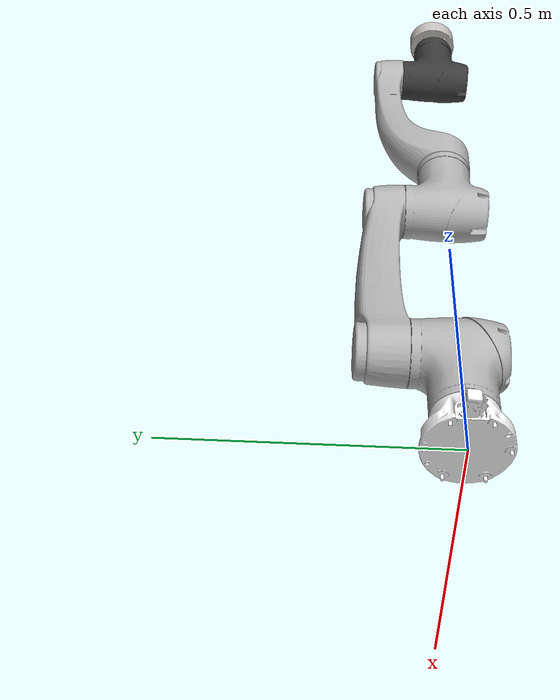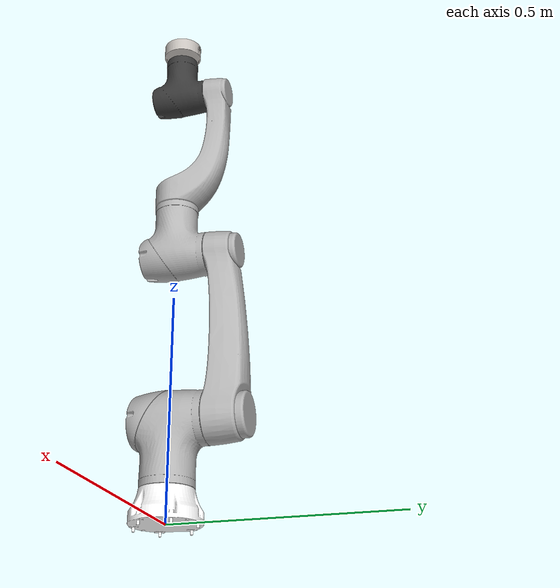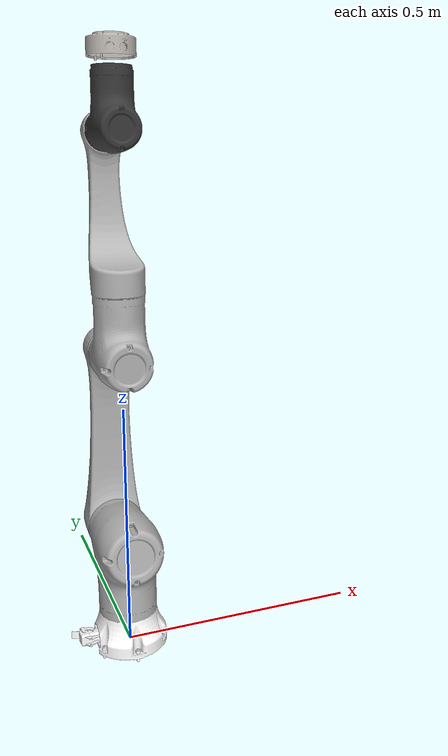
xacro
<?xml version="1.0"?>
<robot xmlns:xacro="http://www.ros.org/wiki/xacro" name="dazu_robotic_arm_trial1">
    <xacro:arg name="initial_positions_file" default="initial_positions.yaml" />

    <!-- Import dazu_robotic_arm_trial1 urdf file -->
    <xacro:include filename="$(find dazu_robotic_arm_trial1)/urdf/dazu_robotic_arm_trial1.urdf" />

    <!-- Import control_xacro -->
    <xacro:include filename="dazu_robotic_arm_trial1.ros2_control.xacro" />

</robot>

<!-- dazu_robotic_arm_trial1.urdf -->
<robot
  name="dazu_robotic_arm_trial1">
  <link
    name="base_link">
    <inertial>
      <origin
        xyz="-0.0013449 -0.0001322 0.029293"
        rpy="0 0 0" />
      <mass
        value="8.0" />
      <inertia
        ixx="0.0015773"
        ixy="1.2223E-07"
        ixz="2.1696E-05"
        iyy="0.001446"
        iyz="6.1863E-08"
        izz="0.0023657" />
    </inertial>
    <visual>
      <origin
        xyz="0 0 0"
        rpy="0 0 0" />
      <geometry>
        <mesh
          filename="file://$(find dazu_robotic_arm_trial1)/meshes/base_link.STL" />
      </geometry>
      <material
        name="">
        <color
          rgba="1 1 1 1" />
      </material>
    </visual>
    <collision>
      <origin
        xyz="0 0 0"
        rpy="0 0 0" />
      <geometry>
        <mesh
          filename="file://$(find dazu_robotic_arm_trial1)/meshes/base_link.STL" />
      </geometry>
    </collision>
  </link>
  <link
    name="Link_1">
    <inertial>
      <origin
        xyz="-3.3881E-06 0.0059071 0.10092"
        rpy="0 0 0" />
      <mass
        value="8.0" />
      <inertia
        ixx="1.0"
        ixy="0.0"
        ixz="0.0"
        iyy="1.0"
        iyz="0.0"
        izz="1.0" />
    </inertial>
    <visual>
      <origin
        xyz="0 0 0"
        rpy="0 0 0" />
      <geometry>
        <mesh
          filename="file://$(find dazu_robotic_arm_trial1)/meshes/Link_1.STL" />
      </geometry>
      <material
        name="">
        <color
          rgba="0.69804 0.69804 0.69804 1" />
      </material>
    </visual>
    <collision>
      <origin
        xyz="0 0 0"
        rpy="0 0 0" />
      <geometry>
        <mesh
          filename="file://$(find dazu_robotic_arm_trial1)/meshes/Link_1.STL" />
      </geometry>
    </collision>
  </link>
  <joint
    name="Joint_1"
    type="revolute">
    <origin
      xyz="-0.0021038 -0.0001266 0.081"
      rpy="0 0 0" />
    <parent
      link="base_link" />
    <child
      link="Link_1" />
    <axis
      xyz="0 0 1" />
    <limit
      lower="-3.14"
      upper="3.14"
      effort="1000"
      velocity="3.000001" />
    <dynamics damping="10.0" friction="10.0"/>
  </joint>
  <link
    name="Link_2">
    <inertial>
      <origin
        xyz="3.37437573807456E-06 0.00469157479008332 0.159177712639718"
        rpy="0 0 0" />
      <mass
        value="8.0" />
      <inertia
        ixx="1.0"
        ixy="0.0"
        ixz="0.0"
        iyy="1.0"
        iyz="0.0"
        izz="1.0" />
    </inertial>
    <visual>
      <origin
        xyz="0 0 0"
        rpy="0 0 0" />
      <geometry>
        <mesh
          filename="file://$(find dazu_robotic_arm_trial1)/meshes/Link_2.STL" />
      </geometry>
      <material
        name="">
        <color
          rgba="0.698039215686274 0.698039215686274 0.698039215686274 1" />
      </material>
    </visual>
    <collision>
      <origin
        xyz="0 0 0"
        rpy="0 0 0" />
      <geometry>
        <mesh
          filename="file://$(find dazu_robotic_arm_trial1)/meshes/Link_2.STL" />
      </geometry>
    </collision>
  </link>
  <joint
    name="Joint_2"
    type="revolute">
    <origin
      xyz="0 0.12298 0.138"
      rpy="0 0 0" />
    <parent
      link="Link_1" />
    <child
      link="Link_2" />
    <axis
      xyz="0 1 0" />
    <limit
      lower="-1.57"
      upper="1.57"
      effort="1000"
      velocity="3.000001" />
    <dynamics damping="10.0" friction="10.0"/>
  </joint>
  <link
    name="Link_3">
    <inertial>
      <origin
        xyz="-9.37545025325856E-06 0.01027554937274 0.0303135532750572"
        rpy="0 0 0" />
      <mass
        value="8.0" />
      <inertia
        ixx="1.0"
        ixy="0.0"
        ixz="0.0"
        iyy="1.0"
        iyz="0.0"
        izz="1.0" />
    </inertial>
    <visual>
      <origin
        xyz="0 0 0"
        rpy="0 0 0" />
      <geometry>
        <mesh
          filename="file://$(find dazu_robotic_arm_trial1)/meshes/Link_3.STL" />
      </geometry>
      <material
        name="">
        <color
          rgba="0.698039215686274 0.698039215686274 0.698039215686274 1" />
      </material>
    </visual>
    <collision>
      <origin
        xyz="0 0 0"
        rpy="0 0 0" />
      <geometry>
        <mesh
          filename="file://$(find dazu_robotic_arm_trial1)/meshes/Link_3.STL" />
      </geometry>
    </collision>
  </link>
  <joint
    name="Joint_3"
    type="revolute">
    <origin
      xyz="0 -0.12763 0.38"
      rpy="0 0 0" />
    <parent
      link="Link_2" />
    <child
      link="Link_3" />
    <axis
      xyz="0 -1 0" />
    <limit
      lower="-1.57"
      upper="1.57"
      effort="1000"
      velocity="3.000001" />
    <dynamics damping="10.0" friction="10.0"/>
  </joint>
  <link
    name="Link_4">
    <inertial>
      <origin
        xyz="3.4251571009817E-05 0.0669795880887711 0.0923076640210112"
        rpy="0 0 0" />
      <mass
        value="8.0" />
      <inertia
        ixx="1.0"
        ixy="0.0"
        ixz="0.0"
        iyy="1.0"
        iyz="0.0"
        izz="1.0" />
    </inertial>
    <visual>
      <origin
        xyz="0 0 0"
        rpy="0 0 0" />
      <geometry>
        <mesh
          filename="file://$(find dazu_robotic_arm_trial1)/meshes/Link_4.STL" />
      </geometry>
      <material
        name="">
        <color
          rgba="0.698039215686274 0.698039215686274 0.698039215686274 1" />
      </material>
    </visual>
    <collision>
      <origin
        xyz="0 0 0"
        rpy="0 0 0" />
      <geometry>
        <mesh
          filename="file://$(find dazu_robotic_arm_trial1)/meshes/Link_4.STL" />
      </geometry>
    </collision>
  </link>
  <joint
    name="Joint_4"
    type="revolute">
    <origin
      xyz="0 0.0046413 0.15127"
      rpy="0.081449 0 0" />
    <parent
      link="Link_3" />
    <child
      link="Link_4" />
    <axis
      xyz="0 0 1" />
    <limit
      lower="-3.14"
      upper="3.14"
      effort="1000"
      velocity="3.000001" />
    <dynamics damping="10.0" friction="10.0"/>
  </joint>
  <link
    name="Link_5">
    <inertial>
      <origin
        xyz="8.43176552533148E-07 0.00189429511558399 0.0225173791286002"
        rpy="0 0 0" />
      <mass
        value="8.0" />
      <inertia
        ixx="1.0"
        ixy="0.0"
        ixz="0.0"
        iyy="1.0"
        iyz="0.0"
        izz="1.0" />
    </inertial>
    <visual>
      <origin
        xyz="0 0 0"
        rpy="0 0 0" />
      <geometry>
        <mesh
          filename="file://$(find dazu_robotic_arm_trial1)/meshes/Link_5.STL" />
      </geometry>
      <material
        name="">
        <color
          rgba="0.223529411764706 0.223529411764706 0.223529411764706 1" />
      </material>
    </visual>
    <collision>
      <origin
        xyz="0 0 0"
        rpy="0 0 0" />
      <geometry>
        <mesh
          filename="file://$(find dazu_robotic_arm_trial1)/meshes/Link_5.STL" />
      </geometry>
    </collision>
  </link>
  <joint
    name="Joint_5"
    type="revolute">
    <origin
      xyz="0 0.024259 0.26765"
      rpy="-0.081449 0 0" />
    <parent
      link="Link_4" />
    <child
      link="Link_5" />
    <axis
      xyz="0 -1 0" />
    <limit
      lower="-1.57"
      upper="1.57"
      effort="1000"
      velocity="3.000001" />
    <dynamics damping="10.0" friction="10.0"/>
  </joint>
  <link
    name="Link_6">
    <inertial>
      <origin
        xyz="-1.82018507104034E-06 0.000669132642277363 -0.00529587800179732"
        rpy="0 0 0" />
      <mass
        value="8.0" />
      <inertia
        ixx="1.0"
        ixy="0.0"
        ixz="0.0"
        iyy="1.0"
        iyz="0.0"
        izz="1.0" />
    </inertial>
    <visual>
      <origin
        xyz="0 0 0"
        rpy="0 0 0" />
      <geometry>
        <mesh
          filename="file://$(find dazu_robotic_arm_trial1)/meshes/Link_6.STL" />
      </geometry>
      <material
        name="">
        <color
          rgba="0.772549019607843 0.752941176470588 0.733333333333333 1" />
      </material>
    </visual>
    <collision>
      <origin
        xyz="0 0 0"
        rpy="0 0 0" />
      <geometry>
        <mesh
          filename="file://$(find dazu_robotic_arm_trial1)/meshes/Link_6.STL" />
      </geometry>
    </collision>
  </link>
  <joint
    name="Joint_6"
    type="revolute">
    <origin
      xyz="1.7884E-05 -0.0027482 0.13422"
      rpy="0 0 0" />
    <parent
      link="Link_5" />
    <child
      link="Link_6" />
    <axis
      xyz="0 0 1" />
    <limit
      lower="-3.14"
      upper="3.14"
      effort="1000"
      velocity="3.000001" />
    <dynamics damping="10.0" friction="10.0"/>
  </joint>
</robot>
